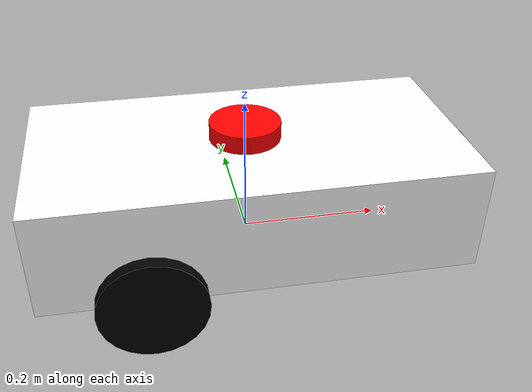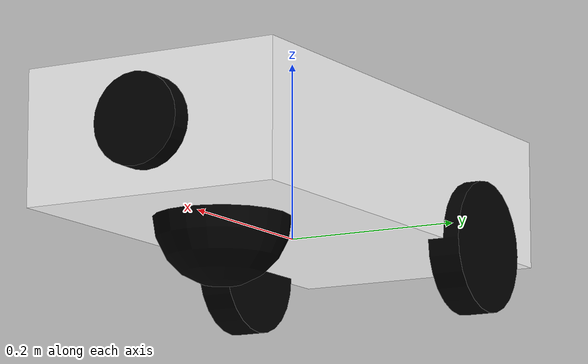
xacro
<?xml version="1.0"?>
<robot xmlns:xacro="http://www.ros.org/wiki/xacro"  name="robot">

    <xacro:include filename="robot_core.urdf.xacro" />
    <xacro:include filename="ros2_control.urdf.xacro" />
    <xacro:include filename="lidar.urdf.xacro" />
    <xacro:include filename="depth_camera.urdf.xacro" />

</robot>

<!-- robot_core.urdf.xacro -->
<robot xmlns:xacro="http://www.ros.org/wiki/xacro">

    <xacro:include filename="color.urdf.xacro" />
    <xacro:include filename="inertia.urdf.xacro" />

    <link name="base_link">
    </link>

    <joint name="chassis_joint" type="fixed">
        <parent link="base_link" />
        <child link="chassis_link" />
        <origin xyz="-0.3 0 0" rpy="0 0 0" />
    </joint>

    <link name="chassis_link">
        <visual>
            <origin xyz="0.3 0 0.075" rpy="0 0 0" />
            <geometry>
                <box size="0.6 0.3 0.15" />
            </geometry>
            <material name="white" />
        </visual>
        <collision>
            <origin xyz="0.3 0 0.075" rpy="0 0 0" />
            <geometry>
                <box size="0.6 0.3 0.15" />
            </geometry>
        </collision>
        <xacro:inertial_box mass="10.0" x="0.6" y="0.3" z="0.15">
            <origin xyz="0.3 0 0.075" rpy="0 0 0" />
        </xacro:inertial_box>
    </link>

    <gazebo reference="chassis_link">
        <material>Gazebo/White</material>
    </gazebo>

    <joint name="left_rear_wheel_joint" type="continuous">
        <parent link="chassis_link" />
        <child link="left_rear_wheel_link" />
        <origin xyz="0.15 0.15 0" rpy="-${pi/2} 0 0" />
        <axis xyz="0 0 1" />
    </joint>

    <link name="left_rear_wheel_link">
        <visual>
            <origin xyz="0 0 0" rpy="0 0 0" />
            <geometry>
                <cylinder radius="0.075" length="0.0375" />
            </geometry>
            <material name="black" />
        </visual>
        <collision>
            <origin xyz="0 0 0" rpy="0 0 0" />
            <geometry>
                <cylinder radius="0.075" length="0.0375" />
            </geometry>
        </collision>
        <xacro:inertial_cylinder mass="1.0" radius="0.075" length="0.0375">
            <origin xyz="0 0 0" rpy="0 0 0" />
        </xacro:inertial_cylinder>
    </link>

    <gazebo reference="left_rear_wheel_link">
        <material>Gazebo/Black</material>
    </gazebo>

    <joint name="right_rear_wheel_joint" type="continuous">
        <parent link="chassis_link" />
        <child link="right_rear_wheel_link" />
        <origin xyz="0.15 -0.15 0" rpy="-${pi/2} 0 0" />
        <axis xyz="0 0 1" />
    </joint>

    <link name="right_rear_wheel_link">
        <visual>
            <origin xyz="0 0 0" rpy="0 0 0" />
            <geometry>
                <cylinder radius="0.075" length="0.0375" />
            </geometry>
            <material name="black" />
        </visual>
        <collision>
            <origin xyz="0 0 0" rpy="0 0 0" />
            <geometry>
                <cylinder radius="0.075" length="0.0375" />
            </geometry>
        </collision>
        <xacro:inertial_cylinder mass="1.0" radius="0.075" length="0.0375">
            <origin xyz="0 0 0" rpy="0 0 0" />
        </xacro:inertial_cylinder>
    </link>

    <gazebo reference="right_rear_wheel_link">
        <material>Gazebo/Black</material>
    </gazebo>

    <joint name="front_caster_joint" type="fixed">
        <parent link="chassis_link" />
        <child link="front_caster_link" />
        <origin xyz="0.45 0 0" rpy="0 0 0" />
    </joint>
    <link name="front_caster_link">
        <visual>
            <origin xyz="0 0 0" rpy="0 0 0" />
            <geometry>
                <sphere radius="0.075" />
            </geometry>
            <material name="black" />
        </visual>
        <collision>
            <origin xyz="0 0 0" rpy="0 0 0" />
            <geometry>
                <sphere radius="0.075" />
            </geometry>
        </collision>
        <xacro:inertial_sphere mass="0.5" radius="0.075">
            <origin xyz="0 0 0" rpy="0 0 0" />
        </xacro:inertial_sphere>
    </link>
    <gazebo reference="front_caster_link">
        <material>Gazebo/Black</material>
        <mu1 value="0.001" />
        <mu2 value="0.001" />
    </gazebo>

</robot>

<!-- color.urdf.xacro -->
<robot xmlns:xacro="http://www.ros.org/wiki/xacro">

    <material name="red">
        <color rgba="1 0 0 1" />
    </material>

    <material name="orange">
        <color rgba="1 0.5 0 1" />
    </material>

    <material name="yellow">
        <color rgba="1 1 0 1" />
    </material>

    <material name="green">
        <color rgba="0 1 0 1" />
    </material>

    <material name="blue">
        <color rgba="0 0 1 1" />
    </material>

    <material name="indigo">
        <color rgba="0.5 0 1 1" />
    </material>

    <material name="violet">
        <color rgba="0.5 0 0.5 1" />
    </material>

    <material name="white">
        <color rgba="1 1 1 1" />
    </material>

    <material name="light_gray">
        <color rgba="0.75 0.75 0.75 1" />
    </material>

    <material name="gray">
        <color rgba="0.5 0.5 0.5 1" />
    </material>

    <material name="dark_gray">
        <color rgba="0.25 0.25 0.25 1" />
    </material>

    <material name="black">
        <color rgba="0 0 0 1" />
    </material>

    <material name="gold">
        <color rgba="1 0.84 0 1" />
    </material>

    <material name="silver">
        <color rgba="0.75 0.75 0.75 1" />
    </material>

    <material name="bronze">
        <color rgba="0.8 0.5 0.2 1" />
    </material>

    <material name="aqua">
        <color rgba="0 1 1 1" />
    </material>

    <material name="beige">
        <color rgba="0.96 0.96 0.86 1" />
    </material>

    <material name="brown">
        <color rgba="0.6 0.4 0.2 1" />
    </material>

    <material name="coral">
        <color rgba="1 0.5 0.31 1" />
    </material>

    <material name="crimson">
        <color rgba="0.86 0.08 0.24 1" />
    </material>

    <material name="cyan">
        <color rgba="0 1 1 1" />
    </material>

    <material name="forest_green">
        <color rgba="0.13 0.55 0.13 1" />
    </material>

    <material name="khaki">
        <color rgba="0.94 0.9 0.55 1" />
    </material>

    <material name="lavender">
        <color rgba="0.9 0.9 0.98 1" />
    </material>

    <material name="lime">
        <color rgba="0.5 1 0 1" />
    </material>

    <material name="magenta">
        <color rgba="1 0 1 1" />
    </material>

    <material name="maroon">
        <color rgba="0.5 0 0 1" />
    </material>

    <material name="navy">
        <color rgba="0 0 0.5 1" />
    </material>

    <material name="olive">
        <color rgba="0.5 0.5 0 1" />
    </material>

    <material name="pink">
        <color rgba="1 0.75 0.8 1" />
    </material>

    <material name="purple">
        <color rgba="0.5 0 0.5 1" />
    </material>

    <material name="royal_blue">
        <color rgba="0.25 0.41 0.88 1" />
    </material>

    <material name="slate_gray">
        <color rgba="0.44 0.5 0.56 1" />
    </material>

    <material name="teal">
        <color rgba="0 0.5 0.5 1" />
    </material>

    <material name="turquoise">
        <color rgba="0.25 0.88 0.82 1" />
    </material>

</robot>

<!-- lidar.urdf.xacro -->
<robot xmlns:xacro="http://www.ros.org/wiki/xacro">

    <joint name="lidar_joint" type="fixed">
        <parent link="chassis_link" />
        <child link="lidar_link" />
        <origin xyz="0.3 0 0.1625" rpy="0 0 0" />
    </joint>

    <link name="lidar_link">
        <visual>
            <origin xyz="0 0 0" rpy="0 0 0" />
            <geometry>
                <cylinder radius="0.05" length="0.025" />
            </geometry>
            <material name="red"/>
        </visual>
        <collision>
            <origin xyz="0 0 0" rpy="0 0 0" />
            <geometry>
                <cylinder radius="0.05" length="0.025" />
            </geometry>
            <material name="red"/>
        </collision>
        <xacro:inertial_sphere mass="0.5" radius="0.025">
            <origin xyz="0 0 0" rpy="0 0 0" />
        </xacro:inertial_sphere>
    </link>

    <gazebo reference="lidar_link">
        <material>Gazebo/Red</material>

        <sensor name="laser" type="ray">
            <pose> 0 0 0 0 0 0 </pose>
            <visualize>false</visualize>
            <update_rate>20</update_rate>
            <ray>
                <scan>
                    <horizontal>
                        <samples>360</samples>
                        <resolution>1</resolution>
                        <min_angle>-3.14</min_angle>
                        <max_angle>3.14</max_angle>
                    </horizontal>
                </scan>
                <range>
                    <min>0.06</min>
                    <max>12</max>
                    <resolution>0.01</resolution>
                </range>
            </ray>
            <plugin name="laser_controller" filename="libgazebo_ros_ray_sensor.so">
                <ros>
                    <argument>~/out:=scan</argument>
                </ros>
                <output_type>sensor_msgs/LaserScan</output_type>
                <frame_name>lidar_link</frame_name>
            </plugin>
        </sensor>
    </gazebo>

</robot>

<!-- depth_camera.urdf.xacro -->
<robot xmlns:xacro="http://www.ros.org/wiki/xacro">

    <joint name="camera_joint" type="fixed">
        <parent link="chassis_link" />
        <child link="camera_link" />
        <origin xyz="0.6125 0 0.075" rpy="0 0 0" />
    </joint>

    <link name="camera_link">
    </link>

    <joint name="camera_joint_optical" type="fixed">
        <parent link="camera_link" />
        <child link="camera_link_optical" />
        <origin xyz="0 0 0" rpy="-${pi/2} 0 -${pi/2}" />
    </joint>

    <link name="camera_link_optical">
    <visual>
            <origin xyz="0 0 0" rpy="0 0 0" />
            <geometry>
                <cylinder radius="0.05" length="0.025" />
            </geometry>
            <material name="black"/>
        </visual>
        <collision>
            <origin xyz="0 0 0" rpy="0 0 0" />
            <geometry>
                <cylinder radius="0.05" length="0.025" />
            </geometry>
            <material name="black"/>
        </collision>
        <xacro:inertial_sphere mass="0.5" radius="0.025">
            <origin xyz="0 0 0" rpy="0 0 0" />
        </xacro:inertial_sphere>
    </link>

    <gazebo reference="camera_link_optical">
        <material>Gazebo/Black</material>
    </gazebo>

    <gazebo reference="camera_link">
        <sensor name="camera" type="depth">
            <pose> 0 0 0 0 0 0 </pose>
            <visualize>true</visualize>
            <update_rate>100</update_rate>
            <camera>
                <horizontal_fov>1.089</horizontal_fov>
                <image>
                    <format>B8G8R8</format>
                    <width>640</width>
                    <height>480</height>
                </image>
                <clip>
                    <near>0.05</near>
                    <far>12.0</far>
                </clip>
            </camera>
            <plugin name="camera_controller" filename="libgazebo_ros_camera.so">
                <frame_name>camera_link_optical</frame_name>
                <min_depth>0.05</min_depth>
                <max_depth>12.0</max_depth>
            </plugin>
        </sensor>
    </gazebo>

</robot>
